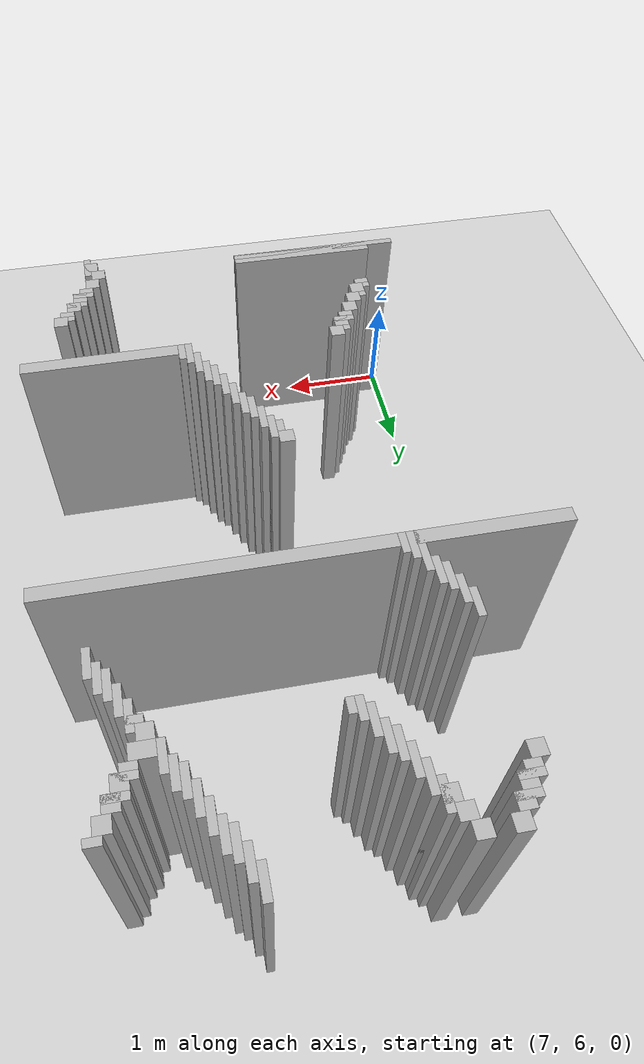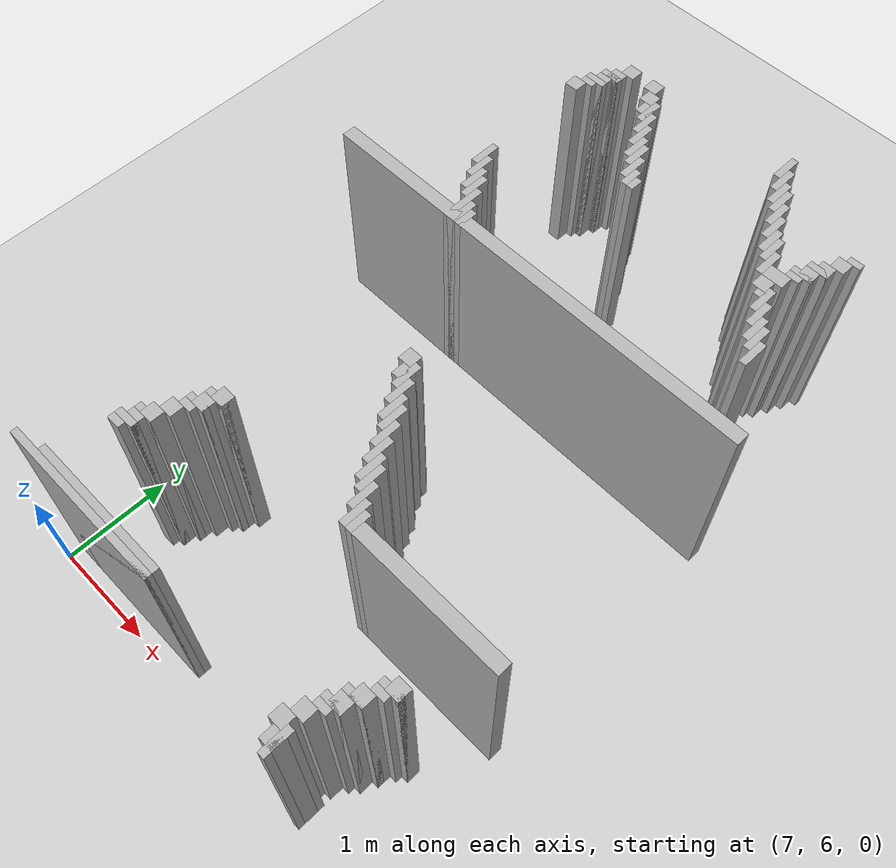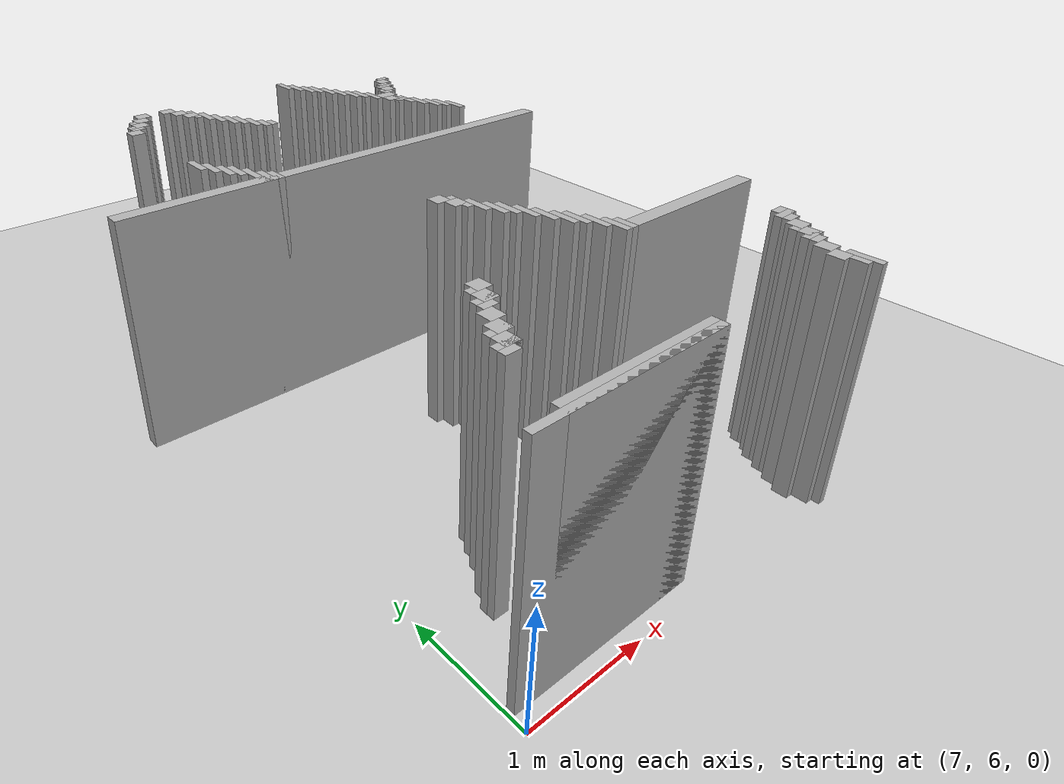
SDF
<sdf version="1.6">
 <world name="slam_world">
  <model name="ground_plane">
   <static>true</static>
   <link name="link">
    <collision name="collision">
     <geometry><plane><normal>0 0 1</normal><size>100 100</size></plane></geometry>
    </collision>
    <visual name="visual">
     <geometry><plane><normal>0 0 1</normal><size>100 100</size></plane></geometry>
     <material>
      <ambient>0.8 0.8 0.8 1</ambient>
      <diffuse>0.8 0.8 0.8 1</diffuse>
      <specular>0.8 0.8 0.8 1</specular>
     </material>
    </visual>
   </link>
  </model>
  <model name="wall_1148">
   <static>true</static>
   <pose>9.351063829787233 12.127659574468083 1.0 0 0 0</pose>
   <link name="link">
    <collision name="collision">
     <geometry><box><size>0.06382978723404255 0.2553191489361702 2.0</size></box></geometry>
    </collision>
    <visual name="visual">
     <geometry><box><size>0.06382978723404255 0.2553191489361702 2.0</size></box></geometry>
     <material><ambient>0.5 0.5 0.5 1</ambient><diffuse>0.7 0.7 0.7 1</diffuse></material>
    </visual>
   </link>
  </model>
  <model name="wall_1162">
   <static>true</static>
   <pose>7.723404255319148 12.063829787234042 1.0 0 0 0</pose>
   <link name="link">
    <collision name="collision">
     <geometry><box><size>0.1276595744680851 0.1276595744680851 2.0</size></box></geometry>
    </collision>
    <visual name="visual">
     <geometry><box><size>0.1276595744680851 0.1276595744680851 2.0</size></box></geometry>
     <material><ambient>0.5 0.5 0.5 1</ambient><diffuse>0.7 0.7 0.7 1</diffuse></material>
    </visual>
   </link>
  </model>
  <model name="wall_1163">
   <static>true</static>
   <pose>7.978723404255319 12.063829787234042 1.0 0 0 0</pose>
   <link name="link">
    <collision name="collision">
     <geometry><box><size>0.1276595744680851 0.1276595744680851 2.0</size></box></geometry>
    </collision>
    <visual name="visual">
     <geometry><box><size>0.1276595744680851 0.1276595744680851 2.0</size></box></geometry>
     <material><ambient>0.5 0.5 0.5 1</ambient><diffuse>0.7 0.7 0.7 1</diffuse></material>
    </visual>
   </link>
  </model>
  <model name="wall_1164">
   <static>true</static>
   <pose>9.414893617021276 11.999999999999998 1.0 0 0 0</pose>
   <link name="link">
    <collision name="collision">
     <geometry><box><size>0.06382978723404255 0.2553191489361702 2.0</size></box></geometry>
    </collision>
    <visual name="visual">
     <geometry><box><size>0.06382978723404255 0.2553191489361702 2.0</size></box></geometry>
     <material><ambient>0.5 0.5 0.5 1</ambient><diffuse>0.7 0.7 0.7 1</diffuse></material>
    </visual>
   </link>
  </model>
  <model name="wall_1172">
   <static>true</static>
   <pose>7.659574468085106 11.936170212765957 1.0 0 0 0</pose>
   <link name="link">
    <collision name="collision">
     <geometry><box><size>0.1276595744680851 0.1276595744680851 2.0</size></box></geometry>
    </collision>
    <visual name="visual">
     <geometry><box><size>0.1276595744680851 0.1276595744680851 2.0</size></box></geometry>
     <material><ambient>0.5 0.5 0.5 1</ambient><diffuse>0.7 0.7 0.7 1</diffuse></material>
    </visual>
   </link>
  </model>
  <model name="wall_1173">
   <static>true</static>
   <pose>8.042553191489361 11.936170212765957 1.0 0 0 0</pose>
   <link name="link">
    <collision name="collision">
     <geometry><box><size>0.1276595744680851 0.1276595744680851 2.0</size></box></geometry>
    </collision>
    <visual name="visual">
     <geometry><box><size>0.1276595744680851 0.1276595744680851 2.0</size></box></geometry>
     <material><ambient>0.5 0.5 0.5 1</ambient><diffuse>0.7 0.7 0.7 1</diffuse></material>
    </visual>
   </link>
  </model>
  <model name="wall_1174">
   <static>true</static>
   <pose>9.478723404255318 11.872340425531913 1.0 0 0 0</pose>
   <link name="link">
    <collision name="collision">
     <geometry><box><size>0.06382978723404255 0.2553191489361702 2.0</size></box></geometry>
    </collision>
    <visual name="visual">
     <geometry><box><size>0.06382978723404255 0.2553191489361702 2.0</size></box></geometry>
     <material><ambient>0.5 0.5 0.5 1</ambient><diffuse>0.7 0.7 0.7 1</diffuse></material>
    </visual>
   </link>
  </model>
  <model name="wall_1182">
   <static>true</static>
   <pose>7.627659574468084 11.904255319148936 1.0 0 0 0</pose>
   <link name="link">
    <collision name="collision">
     <geometry><box><size>0.19148936170212766 0.06382978723404255 2.0</size></box></geometry>
    </collision>
    <visual name="visual">
     <geometry><box><size>0.19148936170212766 0.06382978723404255 2.0</size></box></geometry>
     <material><ambient>0.5 0.5 0.5 1</ambient><diffuse>0.7 0.7 0.7 1</diffuse></material>
    </visual>
   </link>
  </model>
  <model name="wall_1183">
   <static>true</static>
   <pose>8.138297872340425 11.808510638297872 1.0 0 0 0</pose>
   <link name="link">
    <collision name="collision">
     <geometry><box><size>0.06382978723404255 0.2553191489361702 2.0</size></box></geometry>
    </collision>
    <visual name="visual">
     <geometry><box><size>0.06382978723404255 0.2553191489361702 2.0</size></box></geometry>
     <material><ambient>0.5 0.5 0.5 1</ambient><diffuse>0.7 0.7 0.7 1</diffuse></material>
    </visual>
   </link>
  </model>
  <model name="wall_1184">
   <static>true</static>
   <pose>9.542553191489361 11.808510638297872 1.0 0 0 0</pose>
   <link name="link">
    <collision name="collision">
     <geometry><box><size>0.06382978723404255 0.2553191489361702 2.0</size></box></geometry>
    </collision>
    <visual name="visual">
     <geometry><box><size>0.06382978723404255 0.2553191489361702 2.0</size></box></geometry>
     <material><ambient>0.5 0.5 0.5 1</ambient><diffuse>0.7 0.7 0.7 1</diffuse></material>
    </visual>
   </link>
  </model>
  <model name="wall_1191">
   <static>true</static>
   <pose>7.595744680851063 11.808510638297872 1.0 0 0 0</pose>
   <link name="link">
    <collision name="collision">
     <geometry><box><size>0.1276595744680851 0.1276595744680851 2.0</size></box></geometry>
    </collision>
    <visual name="visual">
     <geometry><box><size>0.1276595744680851 0.1276595744680851 2.0</size></box></geometry>
     <material><ambient>0.5 0.5 0.5 1</ambient><diffuse>0.7 0.7 0.7 1</diffuse></material>
    </visual>
   </link>
  </model>
  <model name="wall_1192">
   <static>true</static>
   <pose>8.106382978723403 11.808510638297872 1.0 0 0 0</pose>
   <link name="link">
    <collision name="collision">
     <geometry><box><size>0.1276595744680851 0.1276595744680851 2.0</size></box></geometry>
    </collision>
    <visual name="visual">
     <geometry><box><size>0.1276595744680851 0.1276595744680851 2.0</size></box></geometry>
     <material><ambient>0.5 0.5 0.5 1</ambient><diffuse>0.7 0.7 0.7 1</diffuse></material>
    </visual>
   </link>
  </model>
  <model name="wall_1199">
   <static>true</static>
   <pose>7.563829787234042 11.77659574468085 1.0 0 0 0</pose>
   <link name="link">
    <collision name="collision">
     <geometry><box><size>0.19148936170212766 0.06382978723404255 2.0</size></box></geometry>
    </collision>
    <visual name="visual">
     <geometry><box><size>0.19148936170212766 0.06382978723404255 2.0</size></box></geometry>
     <material><ambient>0.5 0.5 0.5 1</ambient><diffuse>0.7 0.7 0.7 1</diffuse></material>
    </visual>
   </link>
  </model>
  <model name="wall_1200">
   <static>true</static>
   <pose>8.202127659574467 11.680851063829786 1.0 0 0 0</pose>
   <link name="link">
    <collision name="collision">
     <geometry><box><size>0.06382978723404255 0.2553191489361702 2.0</size></box></geometry>
    </collision>
    <visual name="visual">
     <geometry><box><size>0.06382978723404255 0.2553191489361702 2.0</size></box></geometry>
     <material><ambient>0.5 0.5 0.5 1</ambient><diffuse>0.7 0.7 0.7 1</diffuse></material>
    </visual>
   </link>
  </model>
  <model name="wall_1201">
   <static>true</static>
   <pose>9.606382978723403 11.680851063829786 1.0 0 0 0</pose>
   <link name="link">
    <collision name="collision">
     <geometry><box><size>0.06382978723404255 0.2553191489361702 2.0</size></box></geometry>
    </collision>
    <visual name="visual">
     <geometry><box><size>0.06382978723404255 0.2553191489361702 2.0</size></box></geometry>
     <material><ambient>0.5 0.5 0.5 1</ambient><diffuse>0.7 0.7 0.7 1</diffuse></material>
    </visual>
   </link>
  </model>
  <model name="wall_1208">
   <static>true</static>
   <pose>7.531914893617021 11.712765957446807 1.0 0 0 0</pose>
   <link name="link">
    <collision name="collision">
     <geometry><box><size>0.1276595744680851 0.06382978723404255 2.0</size></box></geometry>
    </collision>
    <visual name="visual">
     <geometry><box><size>0.1276595744680851 0.06382978723404255 2.0</size></box></geometry>
     <material><ambient>0.5 0.5 0.5 1</ambient><diffuse>0.7 0.7 0.7 1</diffuse></material>
    </visual>
   </link>
  </model>
  <model name="wall_1209">
   <static>true</static>
   <pose>10.340425531914892 11.712765957446807 1.0 0 0 0</pose>
   <link name="link">
    <collision name="collision">
     <geometry><box><size>0.1276595744680851 0.06382978723404255 2.0</size></box></geometry>
    </collision>
    <visual name="visual">
     <geometry><box><size>0.1276595744680851 0.06382978723404255 2.0</size></box></geometry>
     <material><ambient>0.5 0.5 0.5 1</ambient><diffuse>0.7 0.7 0.7 1</diffuse></material>
    </visual>
   </link>
  </model>
  <model name="wall_1215">
   <static>true</static>
   <pose>7.468085106382978 11.617021276595743 1.0 0 0 0</pose>
   <link name="link">
    <collision name="collision">
     <geometry><box><size>0.1276595744680851 0.1276595744680851 2.0</size></box></geometry>
    </collision>
    <visual name="visual">
     <geometry><box><size>0.1276595744680851 0.1276595744680851 2.0</size></box></geometry>
     <material><ambient>0.5 0.5 0.5 1</ambient><diffuse>0.7 0.7 0.7 1</diffuse></material>
    </visual>
   </link>
  </model>
  <model name="wall_1216">
   <static>true</static>
   <pose>8.26595744680851 11.553191489361701 1.0 0 0 0</pose>
   <link name="link">
    <collision name="collision">
     <geometry><box><size>0.06382978723404255 0.2553191489361702 2.0</size></box></geometry>
    </collision>
    <visual name="visual">
     <geometry><box><size>0.06382978723404255 0.2553191489361702 2.0</size></box></geometry>
     <material><ambient>0.5 0.5 0.5 1</ambient><diffuse>0.7 0.7 0.7 1</diffuse></material>
    </visual>
   </link>
  </model>
  <model name="wall_1217">
   <static>true</static>
   <pose>9.670212765957446 11.553191489361701 1.0 0 0 0</pose>
   <link name="link">
    <collision name="collision">
     <geometry><box><size>0.06382978723404255 0.2553191489361702 2.0</size></box></geometry>
    </collision>
    <visual name="visual">
     <geometry><box><size>0.06382978723404255 0.2553191489361702 2.0</size></box></geometry>
     <material><ambient>0.5 0.5 0.5 1</ambient><diffuse>0.7 0.7 0.7 1</diffuse></material>
    </visual>
   </link>
  </model>
  <model name="wall_1218">
   <static>true</static>
   <pose>10.27659574468085 11.617021276595743 1.0 0 0 0</pose>
   <link name="link">
    <collision name="collision">
     <geometry><box><size>0.1276595744680851 0.1276595744680851 2.0</size></box></geometry>
    </collision>
    <visual name="visual">
     <geometry><box><size>0.1276595744680851 0.1276595744680851 2.0</size></box></geometry>
     <material><ambient>0.5 0.5 0.5 1</ambient><diffuse>0.7 0.7 0.7 1</diffuse></material>
    </visual>
   </link>
  </model>
  <model name="wall_1226">
   <static>true</static>
   <pose>8.329787234042552 11.425531914893616 1.0 0 0 0</pose>
   <link name="link">
    <collision name="collision">
     <geometry><box><size>0.06382978723404255 0.2553191489361702 2.0</size></box></geometry>
    </collision>
    <visual name="visual">
     <geometry><box><size>0.06382978723404255 0.2553191489361702 2.0</size></box></geometry>
     <material><ambient>0.5 0.5 0.5 1</ambient><diffuse>0.7 0.7 0.7 1</diffuse></material>
    </visual>
   </link>
  </model>
  <model name="wall_1227">
   <static>true</static>
   <pose>9.734042553191488 11.425531914893616 1.0 0 0 0</pose>
   <link name="link">
    <collision name="collision">
     <geometry><box><size>0.06382978723404255 0.2553191489361702 2.0</size></box></geometry>
    </collision>
    <visual name="visual">
     <geometry><box><size>0.06382978723404255 0.2553191489361702 2.0</size></box></geometry>
     <material><ambient>0.5 0.5 0.5 1</ambient><diffuse>0.7 0.7 0.7 1</diffuse></material>
    </visual>
   </link>
  </model>
  <model name="wall_1228">
   <static>true</static>
   <pose>10.212765957446807 11.489361702127658 1.0 0 0 0</pose>
   <link name="link">
    <collision name="collision">
     <geometry><box><size>0.1276595744680851 0.1276595744680851 2.0</size></box></geometry>
    </collision>
    <visual name="visual">
     <geometry><box><size>0.1276595744680851 0.1276595744680851 2.0</size></box></geometry>
     <material><ambient>0.5 0.5 0.5 1</ambient><diffuse>0.7 0.7 0.7 1</diffuse></material>
    </visual>
   </link>
  </model>
  <model name="wall_1236">
   <static>true</static>
   <pose>8.393617021276595 11.361702127659573 1.0 0 0 0</pose>
   <link name="link">
    <collision name="collision">
     <geometry><box><size>0.06382978723404255 0.2553191489361702 2.0</size></box></geometry>
    </collision>
    <visual name="visual">
     <geometry><box><size>0.06382978723404255 0.2553191489361702 2.0</size></box></geometry>
     <material><ambient>0.5 0.5 0.5 1</ambient><diffuse>0.7 0.7 0.7 1</diffuse></material>
    </visual>
   </link>
  </model>
  <model name="wall_1237">
   <static>true</static>
   <pose>9.797872340425531 11.361702127659573 1.0 0 0 0</pose>
   <link name="link">
    <collision name="collision">
     <geometry><box><size>0.06382978723404255 0.2553191489361702 2.0</size></box></geometry>
    </collision>
    <visual name="visual">
     <geometry><box><size>0.06382978723404255 0.2553191489361702 2.0</size></box></geometry>
     <material><ambient>0.5 0.5 0.5 1</ambient><diffuse>0.7 0.7 0.7 1</diffuse></material>
    </visual>
   </link>
  </model>
  <model name="wall_1238">
   <static>true</static>
   <pose>10.180851063829786 11.457446808510637 1.0 0 0 0</pose>
   <link name="link">
    <collision name="collision">
     <geometry><box><size>0.19148936170212766 0.06382978723404255 2.0</size></box></geometry>
    </collision>
    <visual name="visual">
     <geometry><box><size>0.19148936170212766 0.06382978723404255 2.0</size></box></geometry>
     <material><ambient>0.5 0.5 0.5 1</ambient><diffuse>0.7 0.7 0.7 1</diffuse></material>
    </visual>
   </link>
  </model>
  <model name="wall_1245">
   <static>true</static>
   <pose>10.148936170212766 11.361702127659573 1.0 0 0 0</pose>
   <link name="link">
    <collision name="collision">
     <geometry><box><size>0.1276595744680851 0.1276595744680851 2.0</size></box></geometry>
    </collision>
    <visual name="visual">
     <geometry><box><size>0.1276595744680851 0.1276595744680851 2.0</size></box></geometry>
     <material><ambient>0.5 0.5 0.5 1</ambient><diffuse>0.7 0.7 0.7 1</diffuse></material>
    </visual>
   </link>
  </model>
  <model name="wall_1252">
   <static>true</static>
   <pose>8.457446808510637 11.234042553191488 1.0 0 0 0</pose>
   <link name="link">
    <collision name="collision">
     <geometry><box><size>0.06382978723404255 0.2553191489361702 2.0</size></box></geometry>
    </collision>
    <visual name="visual">
     <geometry><box><size>0.06382978723404255 0.2553191489361702 2.0</size></box></geometry>
     <material><ambient>0.5 0.5 0.5 1</ambient><diffuse>0.7 0.7 0.7 1</diffuse></material>
    </visual>
   </link>
  </model>
  <model name="wall_1253">
   <static>true</static>
   <pose>9.861702127659573 11.234042553191488 1.0 0 0 0</pose>
   <link name="link">
    <collision name="collision">
     <geometry><box><size>0.06382978723404255 0.2553191489361702 2.0</size></box></geometry>
    </collision>
    <visual name="visual">
     <geometry><box><size>0.06382978723404255 0.2553191489361702 2.0</size></box></geometry>
     <material><ambient>0.5 0.5 0.5 1</ambient><diffuse>0.7 0.7 0.7 1</diffuse></material>
    </visual>
   </link>
  </model>
  <model name="wall_1254">
   <static>true</static>
   <pose>10.117021276595743 11.329787234042552 1.0 0 0 0</pose>
   <link name="link">
    <collision name="collision">
     <geometry><box><size>0.19148936170212766 0.06382978723404255 2.0</size></box></geometry>
    </collision>
    <visual name="visual">
     <geometry><box><size>0.19148936170212766 0.06382978723404255 2.0</size></box></geometry>
     <material><ambient>0.5 0.5 0.5 1</ambient><diffuse>0.7 0.7 0.7 1</diffuse></material>
    </visual>
   </link>
  </model>
  <model name="wall_1261">
   <static>true</static>
   <pose>10.085106382978722 11.26595744680851 1.0 0 0 0</pose>
   <link name="link">
    <collision name="collision">
     <geometry><box><size>0.1276595744680851 0.06382978723404255 2.0</size></box></geometry>
    </collision>
    <visual name="visual">
     <geometry><box><size>0.1276595744680851 0.06382978723404255 2.0</size></box></geometry>
     <material><ambient>0.5 0.5 0.5 1</ambient><diffuse>0.7 0.7 0.7 1</diffuse></material>
    </visual>
   </link>
  </model>
  <model name="wall_1267">
   <static>true</static>
   <pose>8.52127659574468 11.138297872340425 1.0 0 0 0</pose>
   <link name="link">
    <collision name="collision">
     <geometry><box><size>0.06382978723404255 0.19148936170212766 2.0</size></box></geometry>
    </collision>
    <visual name="visual">
     <geometry><box><size>0.06382978723404255 0.19148936170212766 2.0</size></box></geometry>
     <material><ambient>0.5 0.5 0.5 1</ambient><diffuse>0.7 0.7 0.7 1</diffuse></material>
    </visual>
   </link>
  </model>
  <model name="wall_1268">
   <static>true</static>
   <pose>9.989361702127658 11.170212765957446 1.0 0 0 0</pose>
   <link name="link">
    <collision name="collision">
     <geometry><box><size>0.19148936170212766 0.1276595744680851 2.0</size></box></geometry>
    </collision>
    <visual name="visual">
     <geometry><box><size>0.19148936170212766 0.1276595744680851 2.0</size></box></geometry>
     <material><ambient>0.5 0.5 0.5 1</ambient><diffuse>0.7 0.7 0.7 1</diffuse></material>
    </visual>
   </link>
  </model>
  <model name="wall_1274">
   <static>true</static>
   <pose>8.585106382978722 11.106382978723403 1.0 0 0 0</pose>
   <link name="link">
    <collision name="collision">
     <geometry><box><size>0.06382978723404255 0.1276595744680851 2.0</size></box></geometry>
    </collision>
    <visual name="visual">
     <geometry><box><size>0.06382978723404255 0.1276595744680851 2.0</size></box></geometry>
     <material><ambient>0.5 0.5 0.5 1</ambient><diffuse>0.7 0.7 0.7 1</diffuse></material>
    </visual>
   </link>
  </model>
  <model name="wall_1281">
   <static>true</static>
   <pose>9.957446808510637 11.042553191489361 1.0 0 0 0</pose>
   <link name="link">
    <collision name="collision">
     <geometry><box><size>0.1276595744680851 0.1276595744680851 2.0</size></box></geometry>
    </collision>
    <visual name="visual">
     <geometry><box><size>0.1276595744680851 0.1276595744680851 2.0</size></box></geometry>
     <material><ambient>0.5 0.5 0.5 1</ambient><diffuse>0.7 0.7 0.7 1</diffuse></material>
    </visual>
   </link>
  </model>
  <model name="wall_1287">
   <static>true</static>
   <pose>10.053191489361701 10.914893617021276 1.0 0 0 0</pose>
   <link name="link">
    <collision name="collision">
     <geometry><box><size>0.06382978723404255 0.2553191489361702 2.0</size></box></geometry>
    </collision>
    <visual name="visual">
     <geometry><box><size>0.06382978723404255 0.2553191489361702 2.0</size></box></geometry>
     <material><ambient>0.5 0.5 0.5 1</ambient><diffuse>0.7 0.7 0.7 1</diffuse></material>
    </visual>
   </link>
  </model>
  <model name="wall_1293">
   <static>true</static>
   <pose>10.02127659574468 10.946808510638297 1.0 0 0 0</pose>
   <link name="link">
    <collision name="collision">
     <geometry><box><size>0.1276595744680851 0.06382978723404255 2.0</size></box></geometry>
    </collision>
    <visual name="visual">
     <geometry><box><size>0.1276595744680851 0.06382978723404255 2.0</size></box></geometry>
     <material><ambient>0.5 0.5 0.5 1</ambient><diffuse>0.7 0.7 0.7 1</diffuse></material>
    </visual>
   </link>
  </model>
  <model name="wall_1300">
   <static>true</static>
   <pose>10.117021276595743 10.787234042553191 1.0 0 0 0</pose>
   <link name="link">
    <collision name="collision">
     <geometry><box><size>0.06382978723404255 0.2553191489361702 2.0</size></box></geometry>
    </collision>
    <visual name="visual">
     <geometry><box><size>0.06382978723404255 0.2553191489361702 2.0</size></box></geometry>
     <material><ambient>0.5 0.5 0.5 1</ambient><diffuse>0.7 0.7 0.7 1</diffuse></material>
    </visual>
   </link>
  </model>
  <model name="wall_1307">
   <static>true</static>
   <pose>10.180851063829786 10.659574468085106 1.0 0 0 0</pose>
   <link name="link">
    <collision name="collision">
     <geometry><box><size>0.06382978723404255 0.2553191489361702 2.0</size></box></geometry>
    </collision>
    <visual name="visual">
     <geometry><box><size>0.06382978723404255 0.2553191489361702 2.0</size></box></geometry>
     <material><ambient>0.5 0.5 0.5 1</ambient><diffuse>0.7 0.7 0.7 1</diffuse></material>
    </visual>
   </link>
  </model>
  <model name="wall_1314">
   <static>true</static>
   <pose>10.24468085106383 10.595744680851062 1.0 0 0 0</pose>
   <link name="link">
    <collision name="collision">
     <geometry><box><size>0.06382978723404255 0.2553191489361702 2.0</size></box></geometry>
    </collision>
    <visual name="visual">
     <geometry><box><size>0.06382978723404255 0.2553191489361702 2.0</size></box></geometry>
     <material><ambient>0.5 0.5 0.5 1</ambient><diffuse>0.7 0.7 0.7 1</diffuse></material>
    </visual>
   </link>
  </model>
  <model name="wall_1322">
   <static>true</static>
   <pose>7.499999999999999 10.468085106382977 1.0 0 0 0</pose>
   <link name="link">
    <collision name="collision">
     <geometry><box><size>0.06382978723404255 0.2553191489361702 2.0</size></box></geometry>
    </collision>
    <visual name="visual">
     <geometry><box><size>0.06382978723404255 0.2553191489361702 2.0</size></box></geometry>
     <material><ambient>0.5 0.5 0.5 1</ambient><diffuse>0.7 0.7 0.7 1</diffuse></material>
    </visual>
   </link>
  </model>
  <model name="wall_1323">
   <static>true</static>
   <pose>10.308510638297872 10.468085106382977 1.0 0 0 0</pose>
   <link name="link">
    <collision name="collision">
     <geometry><box><size>0.06382978723404255 0.2553191489361702 2.0</size></box></geometry>
    </collision>
    <visual name="visual">
     <geometry><box><size>0.06382978723404255 0.2553191489361702 2.0</size></box></geometry>
     <material><ambient>0.5 0.5 0.5 1</ambient><diffuse>0.7 0.7 0.7 1</diffuse></material>
    </visual>
   </link>
  </model>
  <model name="wall_1331">
   <static>true</static>
   <pose>7.563829787234042 10.340425531914892 1.0 0 0 0</pose>
   <link name="link">
    <collision name="collision">
     <geometry><box><size>0.06382978723404255 0.2553191489361702 2.0</size></box></geometry>
    </collision>
    <visual name="visual">
     <geometry><box><size>0.06382978723404255 0.2553191489361702 2.0</size></box></geometry>
     <material><ambient>0.5 0.5 0.5 1</ambient><diffuse>0.7 0.7 0.7 1</diffuse></material>
    </visual>
   </link>
  </model>
  <model name="wall_1338">
   <static>true</static>
   <pose>7.627659574468084 10.212765957446807 1.0 0 0 0</pose>
   <link name="link">
    <collision name="collision">
     <geometry><box><size>0.06382978723404255 0.2553191489361702 2.0</size></box></geometry>
    </collision>
    <visual name="visual">
     <geometry><box><size>0.06382978723404255 0.2553191489361702 2.0</size></box></geometry>
     <material><ambient>0.5 0.5 0.5 1</ambient><diffuse>0.7 0.7 0.7 1</diffuse></material>
    </visual>
   </link>
  </model>
  <model name="wall_1345">
   <static>true</static>
   <pose>7.691489361702127 10.148936170212766 1.0 0 0 0</pose>
   <link name="link">
    <collision name="collision">
     <geometry><box><size>0.06382978723404255 0.2553191489361702 2.0</size></box></geometry>
    </collision>
    <visual name="visual">
     <geometry><box><size>0.06382978723404255 0.2553191489361702 2.0</size></box></geometry>
     <material><ambient>0.5 0.5 0.5 1</ambient><diffuse>0.7 0.7 0.7 1</diffuse></material>
    </visual>
   </link>
  </model>
  <model name="wall_1354">
   <static>true</static>
   <pose>7.755319148936169 9.957446808510637 1.0 0 0 0</pose>
   <link name="link">
    <collision name="collision">
     <geometry><box><size>0.06382978723404255 0.3829787234042553 2.0</size></box></geometry>
    </collision>
    <visual name="visual">
     <geometry><box><size>0.06382978723404255 0.3829787234042553 2.0</size></box></geometry>
     <material><ambient>0.5 0.5 0.5 1</ambient><diffuse>0.7 0.7 0.7 1</diffuse></material>
    </visual>
   </link>
  </model>
  <model name="wall_1362">
   <static>true</static>
   <pose>7.819148936170212 9.893617021276595 1.0 0 0 0</pose>
   <link name="link">
    <collision name="collision">
     <geometry><box><size>0.06382978723404255 0.2553191489361702 2.0</size></box></geometry>
    </collision>
    <visual name="visual">
     <geometry><box><size>0.06382978723404255 0.2553191489361702 2.0</size></box></geometry>
     <material><ambient>0.5 0.5 0.5 1</ambient><diffuse>0.7 0.7 0.7 1</diffuse></material>
    </visual>
   </link>
  </model>
  <model name="wall_1369">
   <static>true</static>
   <pose>7.882978723404254 9.861702127659573 1.0 0 0 0</pose>
   <link name="link">
    <collision name="collision">
     <geometry><box><size>0.06382978723404255 0.19148936170212766 2.0</size></box></geometry>
    </collision>
    <visual name="visual">
     <geometry><box><size>0.06382978723404255 0.19148936170212766 2.0</size></box></geometry>
     <material><ambient>0.5 0.5 0.5 1</ambient><diffuse>0.7 0.7 0.7 1</diffuse></material>
    </visual>
   </link>
  </model>
  <model name="wall_1375">
   <static>true</static>
   <pose>8.617021276595745 9.829787234042552 1.0 0 0 0</pose>
   <link name="link">
    <collision name="collision">
     <geometry><box><size>4.212765957446808 0.1276595744680851 2.0</size></box></geometry>
    </collision>
    <visual name="visual">
     <geometry><box><size>4.212765957446808 0.1276595744680851 2.0</size></box></geometry>
     <material><ambient>0.5 0.5 0.5 1</ambient><diffuse>0.7 0.7 0.7 1</diffuse></material>
    </visual>
   </link>
  </model>
  <model name="wall_1492">
   <static>true</static>
   <pose>8.553191489361701 8.617021276595745 1.0 0 0 0</pose>
   <link name="link">
    <collision name="collision">
     <geometry><box><size>0.1276595744680851 0.1276595744680851 2.0</size></box></geometry>
    </collision>
    <visual name="visual">
     <geometry><box><size>0.1276595744680851 0.1276595744680851 2.0</size></box></geometry>
     <material><ambient>0.5 0.5 0.5 1</ambient><diffuse>0.7 0.7 0.7 1</diffuse></material>
    </visual>
   </link>
  </model>
  <model name="wall_1496">
   <static>true</static>
   <pose>8.648936170212766 8.48936170212766 1.0 0 0 0</pose>
   <link name="link">
    <collision name="collision">
     <geometry><box><size>0.06382978723404255 0.2553191489361702 2.0</size></box></geometry>
    </collision>
    <visual name="visual">
     <geometry><box><size>0.06382978723404255 0.2553191489361702 2.0</size></box></geometry>
     <material><ambient>0.5 0.5 0.5 1</ambient><diffuse>0.7 0.7 0.7 1</diffuse></material>
    </visual>
   </link>
  </model>
  <model name="wall_1500">
   <static>true</static>
   <pose>8.617021276595745 8.48936170212766 1.0 0 0 0</pose>
   <link name="link">
    <collision name="collision">
     <geometry><box><size>0.1276595744680851 0.1276595744680851 2.0</size></box></geometry>
    </collision>
    <visual name="visual">
     <geometry><box><size>0.1276595744680851 0.1276595744680851 2.0</size></box></geometry>
     <material><ambient>0.5 0.5 0.5 1</ambient><diffuse>0.7 0.7 0.7 1</diffuse></material>
    </visual>
   </link>
  </model>
  <model name="wall_1504">
   <static>true</static>
   <pose>8.712765957446807 8.361702127659575 1.0 0 0 0</pose>
   <link name="link">
    <collision name="collision">
     <geometry><box><size>0.06382978723404255 0.2553191489361702 2.0</size></box></geometry>
    </collision>
    <visual name="visual">
     <geometry><box><size>0.06382978723404255 0.2553191489361702 2.0</size></box></geometry>
     <material><ambient>0.5 0.5 0.5 1</ambient><diffuse>0.7 0.7 0.7 1</diffuse></material>
    </visual>
   </link>
  </model>
  <model name="wall_1512">
   <static>true</static>
   <pose>8.77659574468085 8.23404255319149 1.0 0 0 0</pose>
   <link name="link">
    <collision name="collision">
     <geometry><box><size>0.06382978723404255 0.2553191489361702 2.0</size></box></geometry>
    </collision>
    <visual name="visual">
     <geometry><box><size>0.06382978723404255 0.2553191489361702 2.0</size></box></geometry>
     <material><ambient>0.5 0.5 0.5 1</ambient><diffuse>0.7 0.7 0.7 1</diffuse></material>
    </visual>
   </link>
  </model>
  <model name="wall_1517">
   <static>true</static>
   <pose>8.840425531914892 8.170212765957446 1.0 0 0 0</pose>
   <link name="link">
    <collision name="collision">
     <geometry><box><size>0.06382978723404255 0.2553191489361702 2.0</size></box></geometry>
    </collision>
    <visual name="visual">
     <geometry><box><size>0.06382978723404255 0.2553191489361702 2.0</size></box></geometry>
     <material><ambient>0.5 0.5 0.5 1</ambient><diffuse>0.7 0.7 0.7 1</diffuse></material>
    </visual>
   </link>
  </model>
  <model name="wall_1524">
   <static>true</static>
   <pose>8.904255319148936 8.042553191489361 1.0 0 0 0</pose>
   <link name="link">
    <collision name="collision">
     <geometry><box><size>0.06382978723404255 0.2553191489361702 2.0</size></box></geometry>
    </collision>
    <visual name="visual">
     <geometry><box><size>0.06382978723404255 0.2553191489361702 2.0</size></box></geometry>
     <material><ambient>0.5 0.5 0.5 1</ambient><diffuse>0.7 0.7 0.7 1</diffuse></material>
    </visual>
   </link>
  </model>
  <model name="wall_1530">
   <static>true</static>
   <pose>8.968085106382977 7.914893617021276 1.0 0 0 0</pose>
   <link name="link">
    <collision name="collision">
     <geometry><box><size>0.06382978723404255 0.2553191489361702 2.0</size></box></geometry>
    </collision>
    <visual name="visual">
     <geometry><box><size>0.06382978723404255 0.2553191489361702 2.0</size></box></geometry>
     <material><ambient>0.5 0.5 0.5 1</ambient><diffuse>0.7 0.7 0.7 1</diffuse></material>
    </visual>
   </link>
  </model>
  <model name="wall_1535">
   <static>true</static>
   <pose>9.03191489361702 7.787234042553191 1.0 0 0 0</pose>
   <link name="link">
    <collision name="collision">
     <geometry><box><size>0.06382978723404255 0.2553191489361702 2.0</size></box></geometry>
    </collision>
    <visual name="visual">
     <geometry><box><size>0.06382978723404255 0.2553191489361702 2.0</size></box></geometry>
     <material><ambient>0.5 0.5 0.5 1</ambient><diffuse>0.7 0.7 0.7 1</diffuse></material>
    </visual>
   </link>
  </model>
  <model name="wall_1540">
   <static>true</static>
   <pose>9.095744680851062 7.723404255319148 1.0 0 0 0</pose>
   <link name="link">
    <collision name="collision">
     <geometry><box><size>0.06382978723404255 0.2553191489361702 2.0</size></box></geometry>
    </collision>
    <visual name="visual">
     <geometry><box><size>0.06382978723404255 0.2553191489361702 2.0</size></box></geometry>
     <material><ambient>0.5 0.5 0.5 1</ambient><diffuse>0.7 0.7 0.7 1</diffuse></material>
    </visual>
   </link>
  </model>
  <model name="wall_1546">
   <static>true</static>
   <pose>9.159574468085106 7.595744680851063 1.0 0 0 0</pose>
   <link name="link">
    <collision name="collision">
     <geometry><box><size>0.06382978723404255 0.2553191489361702 2.0</size></box></geometry>
    </collision>
    <visual name="visual">
     <geometry><box><size>0.06382978723404255 0.2553191489361702 2.0</size></box></geometry>
     <material><ambient>0.5 0.5 0.5 1</ambient><diffuse>0.7 0.7 0.7 1</diffuse></material>
    </visual>
   </link>
  </model>
  <model name="wall_1552">
   <static>true</static>
   <pose>9.223404255319148 7.468085106382978 1.0 0 0 0</pose>
   <link name="link">
    <collision name="collision">
     <geometry><box><size>0.06382978723404255 0.2553191489361702 2.0</size></box></geometry>
    </collision>
    <visual name="visual">
     <geometry><box><size>0.06382978723404255 0.2553191489361702 2.0</size></box></geometry>
     <material><ambient>0.5 0.5 0.5 1</ambient><diffuse>0.7 0.7 0.7 1</diffuse></material>
    </visual>
   </link>
  </model>
  <model name="wall_1555">
   <static>true</static>
   <pose>9.287234042553191 7.436170212765957 1.0 0 0 0</pose>
   <link name="link">
    <collision name="collision">
     <geometry><box><size>0.06382978723404255 0.19148936170212766 2.0</size></box></geometry>
    </collision>
    <visual name="visual">
     <geometry><box><size>0.06382978723404255 0.19148936170212766 2.0</size></box></geometry>
     <material><ambient>0.5 0.5 0.5 1</ambient><diffuse>0.7 0.7 0.7 1</diffuse></material>
    </visual>
   </link>
  </model>
  <model name="wall_1560">
   <static>true</static>
   <pose>7.8510638297872335 7.404255319148936 1.0 0 0 0</pose>
   <link name="link">
    <collision name="collision">
     <geometry><box><size>0.1276595744680851 0.1276595744680851 2.0</size></box></geometry>
    </collision>
    <visual name="visual">
     <geometry><box><size>0.1276595744680851 0.1276595744680851 2.0</size></box></geometry>
     <material><ambient>0.5 0.5 0.5 1</ambient><diffuse>0.7 0.7 0.7 1</diffuse></material>
    </visual>
   </link>
  </model>
  <model name="wall_1561">
   <static>true</static>
   <pose>10.02127659574468 7.404255319148936 1.0 0 0 0</pose>
   <link name="link">
    <collision name="collision">
     <geometry><box><size>1.404255319148936 0.1276595744680851 2.0</size></box></geometry>
    </collision>
    <visual name="visual">
     <geometry><box><size>1.404255319148936 0.1276595744680851 2.0</size></box></geometry>
     <material><ambient>0.5 0.5 0.5 1</ambient><diffuse>0.7 0.7 0.7 1</diffuse></material>
    </visual>
   </link>
  </model>
  <model name="wall_1568">
   <static>true</static>
   <pose>7.819148936170212 7.372340425531914 1.0 0 0 0</pose>
   <link name="link">
    <collision name="collision">
     <geometry><box><size>0.19148936170212766 0.06382978723404255 2.0</size></box></geometry>
    </collision>
    <visual name="visual">
     <geometry><box><size>0.19148936170212766 0.06382978723404255 2.0</size></box></geometry>
     <material><ambient>0.5 0.5 0.5 1</ambient><diffuse>0.7 0.7 0.7 1</diffuse></material>
    </visual>
   </link>
  </model>
  <model name="wall_1576">
   <static>true</static>
   <pose>7.787234042553191 7.276595744680851 1.0 0 0 0</pose>
   <link name="link">
    <collision name="collision">
     <geometry><box><size>0.1276595744680851 0.1276595744680851 2.0</size></box></geometry>
    </collision>
    <visual name="visual">
     <geometry><box><size>0.1276595744680851 0.1276595744680851 2.0</size></box></geometry>
     <material><ambient>0.5 0.5 0.5 1</ambient><diffuse>0.7 0.7 0.7 1</diffuse></material>
    </visual>
   </link>
  </model>
  <model name="wall_1585">
   <static>true</static>
   <pose>7.755319148936169 7.244680851063829 1.0 0 0 0</pose>
   <link name="link">
    <collision name="collision">
     <geometry><box><size>0.19148936170212766 0.06382978723404255 2.0</size></box></geometry>
    </collision>
    <visual name="visual">
     <geometry><box><size>0.19148936170212766 0.06382978723404255 2.0</size></box></geometry>
     <material><ambient>0.5 0.5 0.5 1</ambient><diffuse>0.7 0.7 0.7 1</diffuse></material>
    </visual>
   </link>
  </model>
  <model name="wall_1593">
   <static>true</static>
   <pose>7.723404255319148 7.180851063829786 1.0 0 0 0</pose>
   <link name="link">
    <collision name="collision">
     <geometry><box><size>0.1276595744680851 0.06382978723404255 2.0</size></box></geometry>
    </collision>
    <visual name="visual">
     <geometry><box><size>0.1276595744680851 0.06382978723404255 2.0</size></box></geometry>
     <material><ambient>0.5 0.5 0.5 1</ambient><diffuse>0.7 0.7 0.7 1</diffuse></material>
    </visual>
   </link>
  </model>
  <model name="wall_1601">
   <static>true</static>
   <pose>7.659574468085106 7.085106382978723 1.0 0 0 0</pose>
   <link name="link">
    <collision name="collision">
     <geometry><box><size>0.1276595744680851 0.1276595744680851 2.0</size></box></geometry>
    </collision>
    <visual name="visual">
     <geometry><box><size>0.1276595744680851 0.1276595744680851 2.0</size></box></geometry>
     <material><ambient>0.5 0.5 0.5 1</ambient><diffuse>0.7 0.7 0.7 1</diffuse></material>
    </visual>
   </link>
  </model>
  <model name="wall_1610">
   <static>true</static>
   <pose>7.595744680851063 6.957446808510638 1.0 0 0 0</pose>
   <link name="link">
    <collision name="collision">
     <geometry><box><size>0.1276595744680851 0.1276595744680851 2.0</size></box></geometry>
    </collision>
    <visual name="visual">
     <geometry><box><size>0.1276595744680851 0.1276595744680851 2.0</size></box></geometry>
     <material><ambient>0.5 0.5 0.5 1</ambient><diffuse>0.7 0.7 0.7 1</diffuse></material>
    </visual>
   </link>
  </model>
  <model name="wall_1619">
   <static>true</static>
   <pose>7.563829787234042 6.925531914893616 1.0 0 0 0</pose>
   <link name="link">
    <collision name="collision">
     <geometry><box><size>0.19148936170212766 0.06382978723404255 2.0</size></box></geometry>
    </collision>
    <visual name="visual">
     <geometry><box><size>0.19148936170212766 0.06382978723404255 2.0</size></box></geometry>
     <material><ambient>0.5 0.5 0.5 1</ambient><diffuse>0.7 0.7 0.7 1</diffuse></material>
    </visual>
   </link>
  </model>
  <model name="wall_1627">
   <static>true</static>
   <pose>7.531914893617021 6.829787234042553 1.0 0 0 0</pose>
   <link name="link">
    <collision name="collision">
     <geometry><box><size>0.1276595744680851 0.1276595744680851 2.0</size></box></geometry>
    </collision>
    <visual name="visual">
     <geometry><box><size>0.1276595744680851 0.1276595744680851 2.0</size></box></geometry>
     <material><ambient>0.5 0.5 0.5 1</ambient><diffuse>0.7 0.7 0.7 1</diffuse></material>
    </visual>
   </link>
  </model>
  <model name="wall_1628">
   <static>true</static>
   <pose>10.340425531914892 6.829787234042553 1.0 0 0 0</pose>
   <link name="link">
    <collision name="collision">
     <geometry><box><size>0.1276595744680851 0.1276595744680851 2.0</size></box></geometry>
    </collision>
    <visual name="visual">
     <geometry><box><size>0.1276595744680851 0.1276595744680851 2.0</size></box></geometry>
     <material><ambient>0.5 0.5 0.5 1</ambient><diffuse>0.7 0.7 0.7 1</diffuse></material>
    </visual>
   </link>
  </model>
  <model name="wall_1635">
   <static>true</static>
   <pose>7.499999999999999 6.797872340425531 1.0 0 0 0</pose>
   <link name="link">
    <collision name="collision">
     <geometry><box><size>0.19148936170212766 0.06382978723404255 2.0</size></box></geometry>
    </collision>
    <visual name="visual">
     <geometry><box><size>0.19148936170212766 0.06382978723404255 2.0</size></box></geometry>
     <material><ambient>0.5 0.5 0.5 1</ambient><diffuse>0.7 0.7 0.7 1</diffuse></material>
    </visual>
   </link>
  </model>
  <model name="wall_1636">
   <static>true</static>
   <pose>10.308510638297872 6.797872340425531 1.0 0 0 0</pose>
   <link name="link">
    <collision name="collision">
     <geometry><box><size>0.19148936170212766 0.06382978723404255 2.0</size></box></geometry>
    </collision>
    <visual name="visual">
     <geometry><box><size>0.19148936170212766 0.06382978723404255 2.0</size></box></geometry>
     <material><ambient>0.5 0.5 0.5 1</ambient><diffuse>0.7 0.7 0.7 1</diffuse></material>
    </visual>
   </link>
  </model>
  <model name="wall_1643">
   <static>true</static>
   <pose>7.468085106382978 6.734042553191489 1.0 0 0 0</pose>
   <link name="link">
    <collision name="collision">
     <geometry><box><size>0.1276595744680851 0.06382978723404255 2.0</size></box></geometry>
    </collision>
    <visual name="visual">
     <geometry><box><size>0.1276595744680851 0.06382978723404255 2.0</size></box></geometry>
     <material><ambient>0.5 0.5 0.5 1</ambient><diffuse>0.7 0.7 0.7 1</diffuse></material>
    </visual>
   </link>
  </model>
  <model name="wall_1644">
   <static>true</static>
   <pose>10.27659574468085 6.734042553191489 1.0 0 0 0</pose>
   <link name="link">
    <collision name="collision">
     <geometry><box><size>0.1276595744680851 0.06382978723404255 2.0</size></box></geometry>
    </collision>
    <visual name="visual">
     <geometry><box><size>0.1276595744680851 0.06382978723404255 2.0</size></box></geometry>
     <material><ambient>0.5 0.5 0.5 1</ambient><diffuse>0.7 0.7 0.7 1</diffuse></material>
    </visual>
   </link>
  </model>
  <model name="wall_1652">
   <static>true</static>
   <pose>10.212765957446807 6.638297872340425 1.0 0 0 0</pose>
   <link name="link">
    <collision name="collision">
     <geometry><box><size>0.1276595744680851 0.1276595744680851 2.0</size></box></geometry>
    </collision>
    <visual name="visual">
     <geometry><box><size>0.1276595744680851 0.1276595744680851 2.0</size></box></geometry>
     <material><ambient>0.5 0.5 0.5 1</ambient><diffuse>0.7 0.7 0.7 1</diffuse></material>
    </visual>
   </link>
  </model>
  <model name="wall_1661">
   <static>true</static>
   <pose>10.180851063829786 6.606382978723404 1.0 0 0 0</pose>
   <link name="link">
    <collision name="collision">
     <geometry><box><size>0.19148936170212766 0.06382978723404255 2.0</size></box></geometry>
    </collision>
    <visual name="visual">
     <geometry><box><size>0.19148936170212766 0.06382978723404255 2.0</size></box></geometry>
     <material><ambient>0.5 0.5 0.5 1</ambient><diffuse>0.7 0.7 0.7 1</diffuse></material>
    </visual>
   </link>
  </model>
  <model name="wall_1669">
   <static>true</static>
   <pose>10.148936170212766 6.51063829787234 1.0 0 0 0</pose>
   <link name="link">
    <collision name="collision">
     <geometry><box><size>0.1276595744680851 0.1276595744680851 2.0</size></box></geometry>
    </collision>
    <visual name="visual">
     <geometry><box><size>0.1276595744680851 0.1276595744680851 2.0</size></box></geometry>
     <material><ambient>0.5 0.5 0.5 1</ambient><diffuse>0.7 0.7 0.7 1</diffuse></material>
    </visual>
   </link>
  </model>
  <model name="wall_1677">
   <static>true</static>
   <pose>10.117021276595743 6.478723404255319 1.0 0 0 0</pose>
   <link name="link">
    <collision name="collision">
     <geometry><box><size>0.19148936170212766 0.06382978723404255 2.0</size></box></geometry>
    </collision>
    <visual name="visual">
     <geometry><box><size>0.19148936170212766 0.06382978723404255 2.0</size></box></geometry>
     <material><ambient>0.5 0.5 0.5 1</ambient><diffuse>0.7 0.7 0.7 1</diffuse></material>
    </visual>
   </link>
  </model>
  <model name="wall_1685">
   <static>true</static>
   <pose>10.085106382978722 6.414893617021276 1.0 0 0 0</pose>
   <link name="link">
    <collision name="collision">
     <geometry><box><size>0.1276595744680851 0.06382978723404255 2.0</size></box></geometry>
    </collision>
    <visual name="visual">
     <geometry><box><size>0.1276595744680851 0.06382978723404255 2.0</size></box></geometry>
     <material><ambient>0.5 0.5 0.5 1</ambient><diffuse>0.7 0.7 0.7 1</diffuse></material>
    </visual>
   </link>
  </model>
  <model name="wall_1692">
   <static>true</static>
   <pose>10.02127659574468 6.319148936170213 1.0 0 0 0</pose>
   <link name="link">
    <collision name="collision">
     <geometry><box><size>0.1276595744680851 0.1276595744680851 2.0</size></box></geometry>
    </collision>
    <visual name="visual">
     <geometry><box><size>0.1276595744680851 0.1276595744680851 2.0</size></box></geometry>
     <material><ambient>0.5 0.5 0.5 1</ambient><diffuse>0.7 0.7 0.7 1</diffuse></material>
    </visual>
   </link>
  </model>
  <model name="wall_1699">
   <static>true</static>
   <pose>7.946808510638297 6.191489361702128 1.0 0 0 0</pose>
   <link name="link">
    <collision name="collision">
     <geometry><box><size>1.3404255319148934 0.1276595744680851 2.0</size></box></geometry>
    </collision>
    <visual name="visual">
     <geometry><box><size>1.3404255319148934 0.1276595744680851 2.0</size></box></geometry>
     <material><ambient>0.5 0.5 0.5 1</ambient><diffuse>0.7 0.7 0.7 1</diffuse></material>
    </visual>
   </link>
  </model>
  <model name="wall_1700">
   <static>true</static>
   <pose>9.957446808510637 6.191489361702128 1.0 0 0 0</pose>
   <link name="link">
    <collision name="collision">
     <geometry><box><size>0.1276595744680851 0.1276595744680851 2.0</size></box></geometry>
    </collision>
    <visual name="visual">
     <geometry><box><size>0.1276595744680851 0.1276595744680851 2.0</size></box></geometry>
     <material><ambient>0.5 0.5 0.5 1</ambient><diffuse>0.7 0.7 0.7 1</diffuse></material>
    </visual>
   </link>
  </model>
  <model name="wall_1706">
   <static>true</static>
   <pose>7.819148936170212 6.159574468085106 1.0 0 0 0</pose>
   <link name="link">
    <collision name="collision">
     <geometry><box><size>1.5957446808510638 0.06382978723404255 2.0</size></box></geometry>
    </collision>
    <visual name="visual">
     <geometry><box><size>1.5957446808510638 0.06382978723404255 2.0</size></box></geometry>
     <material><ambient>0.5 0.5 0.5 1</ambient><diffuse>0.7 0.7 0.7 1</diffuse></material>
    </visual>
   </link>
  </model>
  <model name="wall_1707">
   <static>true</static>
   <pose>10.053191489361701 6.063829787234042 1.0 0 0 0</pose>
   <link name="link">
    <collision name="collision">
     <geometry><box><size>0.06382978723404255 0.2553191489361702 2.0</size></box></geometry>
    </collision>
    <visual name="visual">
     <geometry><box><size>0.06382978723404255 0.2553191489361702 2.0</size></box></geometry>
     <material><ambient>0.5 0.5 0.5 1</ambient><diffuse>0.7 0.7 0.7 1</diffuse></material>
    </visual>
   </link>
  </model>
  <model name="wall_1713">
   <static>true</static>
   <pose>10.02127659574468 6.063829787234042 1.0 0 0 0</pose>
   <link name="link">
    <collision name="collision">
     <geometry><box><size>0.1276595744680851 0.1276595744680851 2.0</size></box></geometry>
    </collision>
    <visual name="visual">
     <geometry><box><size>0.1276595744680851 0.1276595744680851 2.0</size></box></geometry>
     <material><ambient>0.5 0.5 0.5 1</ambient><diffuse>0.7 0.7 0.7 1</diffuse></material>
    </visual>
   </link>
  </model>
 </world>
</sdf>
